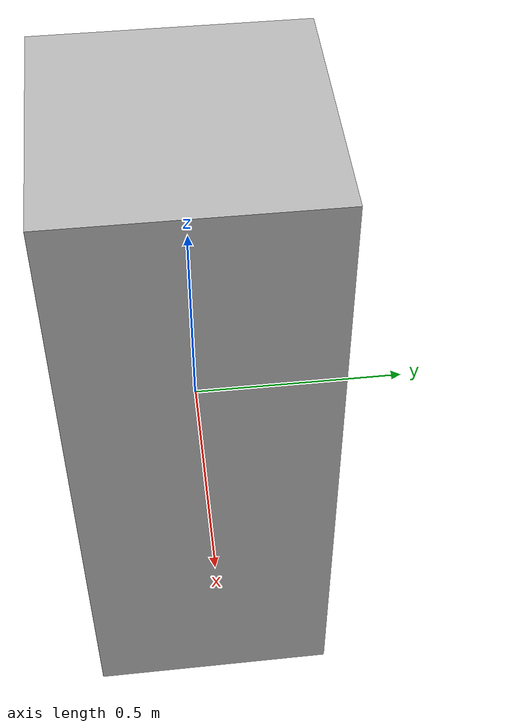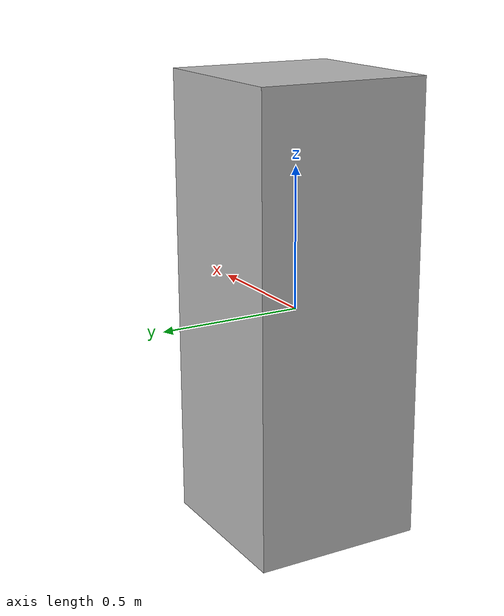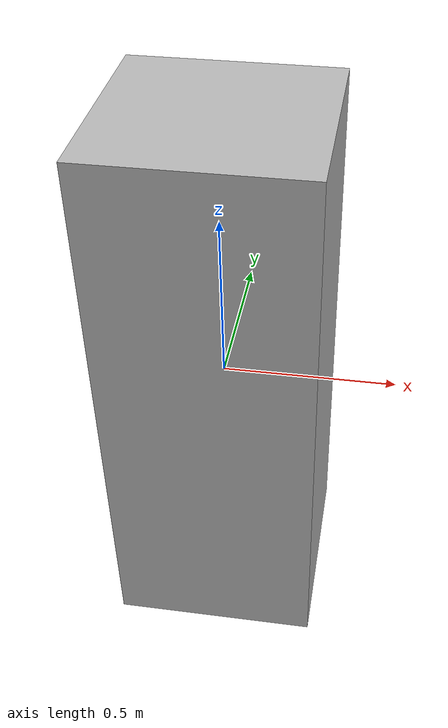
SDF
<?xml version="1.0" encoding="UTF-8"?>
<sdf version="1.4">
   <model name="rival2">
      <static>false</static>
      <link name="chassis">
         <pose>0 0 0.01 0 0 0</pose>
         <inertial>
            <mass>31</mass>
            <pose>0 0 0 0 0 0</pose>
            <inertia>
               <ixx>100</ixx>
               <ixy>0</ixy>
               <ixz>0</ixz>
               <iyy>100</iyy>
               <iyz>0</iyz>
               <izz>2.86</izz>
            </inertia>
         </inertial>
         <collision name="collision">
            <pose>0 0 0 0 0 0</pose>
            <geometry>
               <mesh>
                  <scale>1.5 1.5 1.6</scale>
                  <uri>file://meshes/nubot_frame_collision.dae</uri>
               </mesh>
            </geometry>
            <surface>
               <bounce>
                  <restitution_coefficient>0</restitution_coefficient>
               </bounce>
               <friction>
                  <ode>
                     <mu>0.1</mu>
                     <mu2>0.1</mu2>
                  </ode>
               </friction>
            </surface>
         </collision>
         <visual name="visual">
            <pose>0 0 0 0 0 0</pose>
            <geometry>
               <box>
                <size>0.6 0.6 1.6</size>
               </box>
            </geometry>
         </visual>
         <velocity_decay>
            <linear>0</linear>
            <angular>0</angular>
         </velocity_decay>
         <self_collide>0</self_collide>
         <gravity>1</gravity>
      </link>
      <plugin name="rival_gazebo" filename="libnubot_gazebo.so">
         <flip_cord>1</flip_cord>
      </plugin>
   </model>
</sdf>
